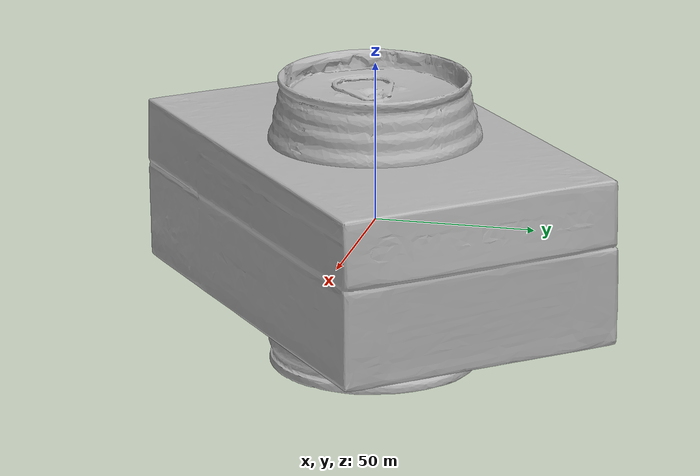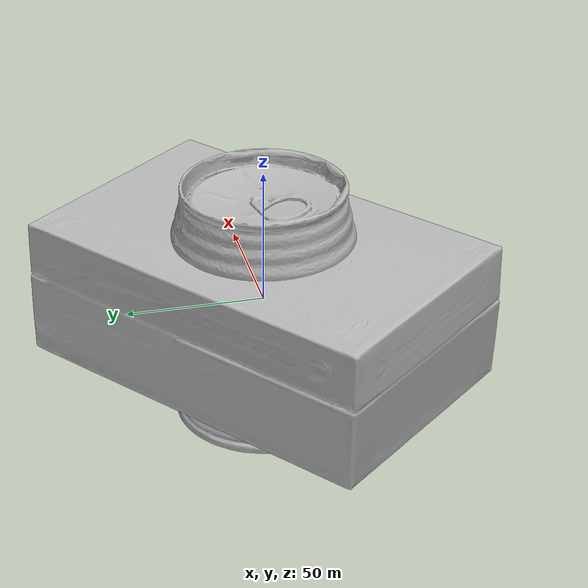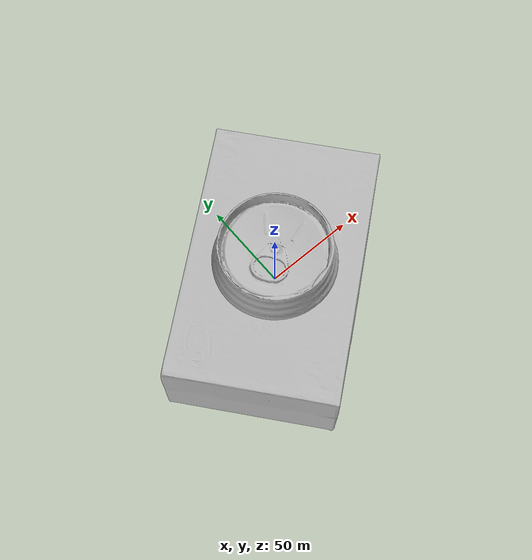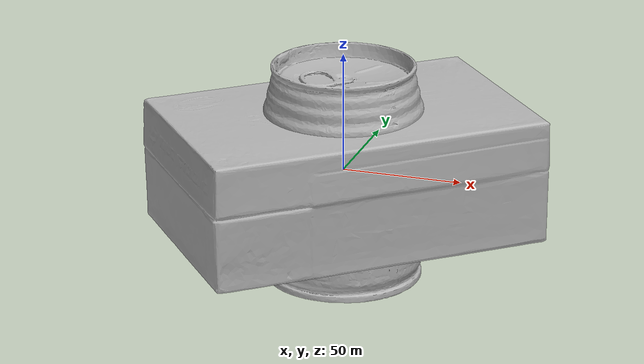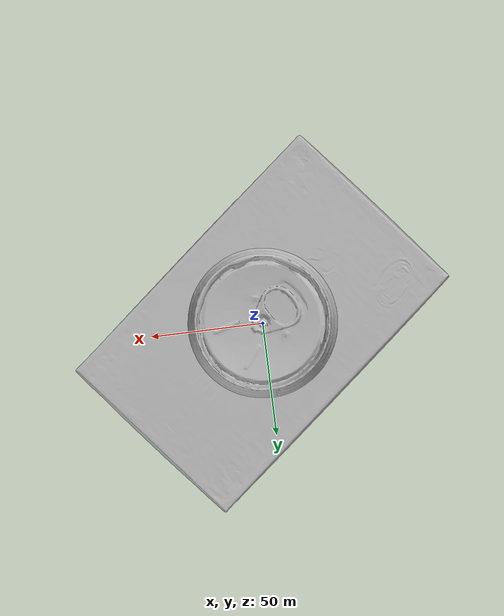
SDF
<?xml version="1.0" ?>
<sdf version="1.4">
  <world name="default">
    <light name="light1" type="point">
      <pose>0 0 1 0 0 0</pose>
      <diffuse>3 3 3 1</diffuse>
      <specular>3 3 3 1</specular>
    </light>
    <light name="light2" type="point">
      <pose>0 0.5 2 0 0 0</pose>
      <diffuse>1 1 1 1</diffuse>
      <specular>1 1 1 1</specular>
    </light>
    <light name="light3" type="point">
      <pose>0 0.5 2 0 0 0</pose>
      <diffuse>3 3 3 1</diffuse>
      <specular>3 3 3 1</specular>
    </light>
    <scene>
      <ambient>0.7 0.7 0.7</ambient>
    </scene>
    <model name="box1">
      <link name="link_box1">
        <collision name="default">
          <geometry>
            <mesh>
              <uri>model://realsense_box/collision_meshes/collision.obj</uri>
              <scale>1.0 1.0 1.0</scale>
            </mesh>
          </geometry>
          <surface>
            <friction>
              <ode>
                <mu>0.5</mu>
                <mu2>0.5</mu2>
              </ode>
            </friction>
            <contact>
              <ode>
                <max_vel>0</max_vel>
                <min_depth>0.0001</min_depth>
                <kp>1e8</kp>
              </ode>
            </contact>
          </surface>
        </collision>
        <visual name="default">
          <geometry>
            <mesh>
              <uri>model://realsense_box/visual_meshes/visual.dae</uri>
              <scale>1.0 1.0 1.0</scale>
            </mesh>
          </geometry>
        </visual>
        <inertial>
          <mass>0.5864310264587402</mass>
          <pose>4.0744838770478964e-05 8.587492629885674e-05 -2.4153792764991522e-05 -0.00012602841398420584 -0.00635893997803049 0.005012323893530406</pose>
          <inertia>
            <ixx>0.00055784633</ixx>
            <iyy>0.0011643406</iyy>
            <izz>0.0014403972</izz>
            <ixy>0</ixy>
            <ixz>0</ixz>
            <iyz>0</iyz>
          </inertia>
        </inertial>
      </link>
      <pose>0.16657498478889465 0.14234979450702667 0.027316011488437653 1.0827945917803554e-08 -1.0880761986369282e-10 0.6799061566537141</pose>
    </model>
    <model name="box2">
      <link name="link_box2">
        <collision name="default">
          <geometry>
            <mesh>
              <uri>model://wooden_puzzle1/collision_meshes/collision.obj</uri>
              <scale>1.0 1.0 1.0</scale>
            </mesh>
          </geometry>
          <surface>
            <friction>
              <ode>
                <mu>0.5</mu>
                <mu2>0.5</mu2>
              </ode>
            </friction>
            <contact>
              <ode>
                <max_vel>0</max_vel>
                <min_depth>0.0001</min_depth>
                <kp>1e8</kp>
              </ode>
            </contact>
          </surface>
        </collision>
        <visual name="default">
          <geometry>
            <mesh>
              <uri>model://wooden_puzzle1/visual_meshes/visual.dae</uri>
              <scale>1.0 1.0 1.0</scale>
            </mesh>
          </geometry>
        </visual>
        <inertial>
          <mass>0.029293930158019066</mass>
          <pose>-0.00017350679263472557 7.972260209498927e-05 -9.191554272547364e-05 -0.07784356807478612 -0.26361316070226715 -0.552870069934309</pose>
          <inertia>
            <ixx>5.5269634e-06</ixx>
            <iyy>5.4205675e-06</iyy>
            <izz>5.4852344e-06</izz>
            <ixy>0</ixy>
            <ixz>0</ixz>
            <iyz>0</iyz>
          </inertia>
        </inertial>
      </link>
      <pose>0.001377147389575839 -0.17594070732593536 0.016801996156573296 0.010514395956722756 -0.00945661471822199 -2.835777913695825</pose>
    </model>
    <model name="box3">
      <link name="link_box3">
        <collision name="default">
          <geometry>
            <mesh>
              <uri>model://wooden_puzzle2/collision_meshes/collision.obj</uri>
              <scale>1.0 1.0 1.0</scale>
            </mesh>
          </geometry>
          <surface>
            <friction>
              <ode>
                <mu>0.5</mu>
                <mu2>0.5</mu2>
              </ode>
            </friction>
            <contact>
              <ode>
                <max_vel>0</max_vel>
                <min_depth>0.0001</min_depth>
                <kp>1e8</kp>
              </ode>
            </contact>
          </surface>
        </collision>
        <visual name="default">
          <geometry>
            <mesh>
              <uri>model://wooden_puzzle2/visual_meshes/visual.dae</uri>
              <scale>1.0 1.0 1.0</scale>
            </mesh>
          </geometry>
        </visual>
        <inertial>
          <mass>0.046210821717977524</mass>
          <pose>2.7402538762544282e-05 4.9976635636994615e-05 6.587122334167361e-05 -0.19202726218652877 0.6112834530151037 -0.6338736448019666</pose>
          <inertia>
            <ixx>8.590097e-06</ixx>
            <iyy>8.826809e-06</iyy>
            <izz>8.7012395e-06</izz>
            <ixy>0</ixy>
            <ixz>0</ixz>
            <iyz>0</iyz>
          </inertia>
        </inertial>
      </link>
      <pose>0.1270933747291565 0.3646899163722992 0.01691773161292076 0.02084758278664257 0.0007220104080955269 -2.409704125908467</pose>
    </model>
    <model name="can1">
      <link name="link_can1">
        <collision name="default">
          <geometry>
            <mesh>
              <uri>model://pepsi/collision_meshes/collision.obj</uri>
              <scale>1.0 1.0 1.0</scale>
            </mesh>
          </geometry>
          <surface>
            <friction>
              <ode>
                <mu>0.5</mu>
                <mu2>0.5</mu2>
              </ode>
            </friction>
            <contact>
              <ode>
                <max_vel>0</max_vel>
                <min_depth>0.0001</min_depth>
                <kp>1e8</kp>
              </ode>
            </contact>
          </surface>
        </collision>
        <visual name="default">
          <geometry>
            <mesh>
              <uri>model://pepsi/visual_meshes/visual.dae</uri>
              <scale>1.0 1.0 1.0</scale>
            </mesh>
          </geometry>
        </visual>
        <inertial>
          <mass>0.38708412647247314</mass>
          <pose>-7.5590331107378e-05 2.9931279641459696e-05 -0.0003384356386959553 -0.0010677624110939459 -0.0021735778616849013 0.5673701652335379</pose>
          <inertia>
            <ixx>0.00077114574</ixx>
            <iyy>0.0007705839</iyy>
            <izz>0.00016412749</izz>
            <ixy>0</ixy>
            <ixz>0</ixz>
            <iyz>0</iyz>
          </inertia>
        </inertial>
      </link>
      <pose>0.1353103220462799 0.21872104704380035 0.0744963064789772 -1.8814131846389993e-05 1.893097938499541e-06 0.9676513337318924</pose>
    </model>
    <model name="can2">
      <link name="link_can2">
        <collision name="default">
          <geometry>
            <mesh>
              <uri>model://redbull/collision_meshes/collision.obj</uri>
              <scale>1.0 1.0 1.0</scale>
            </mesh>
          </geometry>
          <surface>
            <friction>
              <ode>
                <mu>0.5</mu>
                <mu2>0.5</mu2>
              </ode>
            </friction>
            <contact>
              <ode>
                <max_vel>0</max_vel>
                <min_depth>0.0001</min_depth>
                <kp>1e8</kp>
              </ode>
            </contact>
          </surface>
        </collision>
        <visual name="default">
          <geometry>
            <mesh>
              <uri>model://redbull/visual_meshes/visual.dae</uri>
              <scale>1.0 1.0 1.0</scale>
            </mesh>
          </geometry>
        </visual>
        <inertial>
          <mass>0.22841571271419525</mass>
          <pose>-2.2126563635538332e-05 -0.00012659550702665 -0.0006860988214612007 0.001137008533125708 -0.010800935482360328 0.5858832407094048</pose>
          <inertia>
            <ixx>0.00021475992</ixx>
            <iyy>0.00021494119</iyy>
            <izz>0.00012744407</izz>
            <ixy>0</ixy>
            <ixz>0</ixz>
            <iyz>0</iyz>
          </inertia>
        </inertial>
      </link>
      <pose>0.26690199971199036 -0.24367181956768036 0.04638563469052315 -0.01048954420726834 0.007260307862384071 -0.5758197568885454</pose>
    </model>
    <physics type="ode">
      <max_contacts>50</max_contacts>
      <ode>
        <solver>
          <type>quick</type>
          <iters>75</iters>
        </solver>
        <constraints>
          <contact_max_correcting_vel>0</contact_max_correcting_vel>
          <contact_surface_layer>0</contact_surface_layer>
        </constraints>
      </ode>
    </physics>
  </world>
</sdf>
